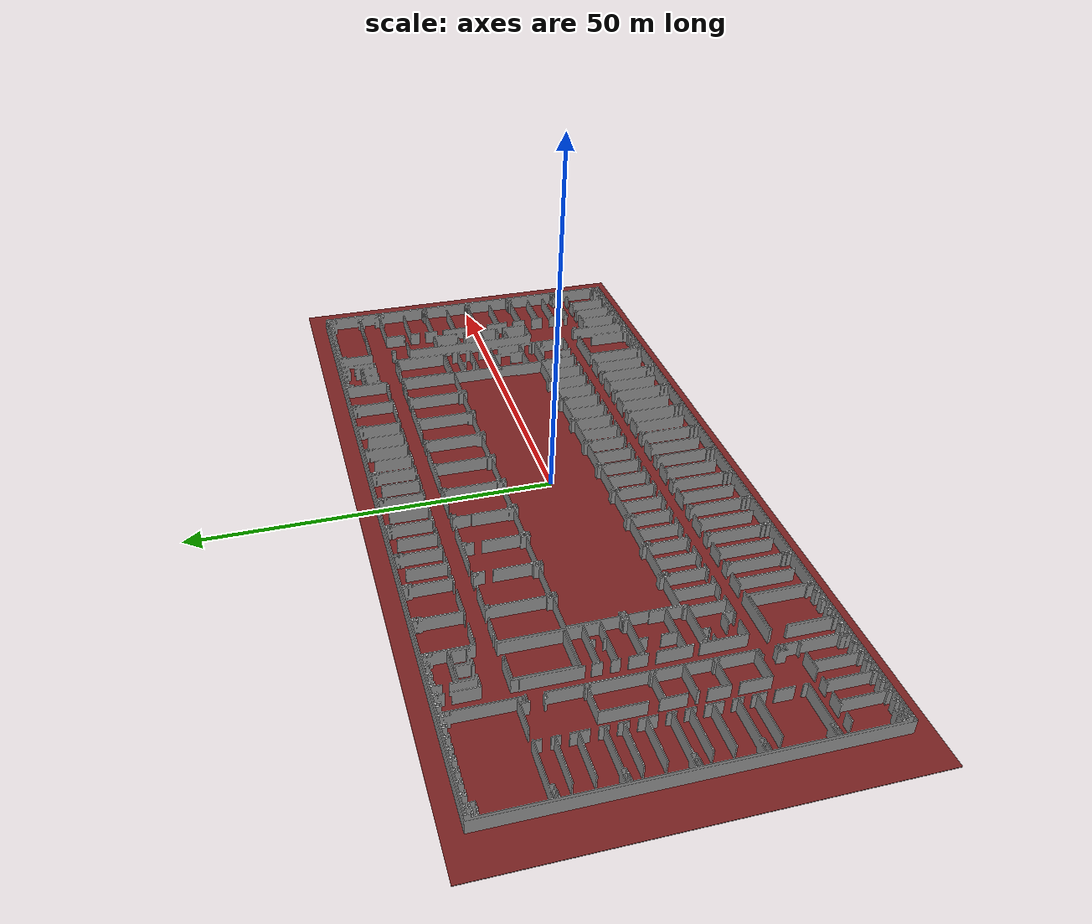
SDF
<sdf version='1.6'>
  <world name='default'>
    <gravity>0 0 -9.8</gravity>

    <scene>
      <ambient>0.7 0.7 0.7 1.0</ambient>
      <background>0.8 0.8 0.8 1.0</background>
    </scene>

    <light name='sun' type='directional'>
      <pose frame=''>10.0 10.0 30 0 -0 0</pose>
      <diffuse>0.8 0.8 0.8 1</diffuse>
      <specular>0.1 0.1 0.1 1</specular>
      <cast_shadows>0</cast_shadows>
      <attenuation>
        <range>1000</range>
        <constant>0.9</constant>
        <linear>0.01</linear>
        <quadratic>0.001</quadratic>
      </attenuation>
      <direction>0 0 -1</direction>
    </light>

    <gui fullscreen='0'>
      <camera name='user_camera'>
        <pose frame=''>0 0 10 0 0 0</pose>
        <view_controller>orbit</view_controller>
        <projection_type>perspective</projection_type>
      </camera>
    </gui>

    <model name='ground_plane'>
      <static>1</static>
      <pose frame=''>0 0 -0.05 0 0 0</pose>
      <link name='link'>
        <collision name='collision'>
          <geometry>
            <box>
              <size>112.09 54.12 0.1</size>
            </box>
          </geometry>
          <surface>
            <friction>
              <ode>
                <mu>100</mu>
                <mu2>50</mu2>
              </ode>
              <torsional>
                <ode/>
              </torsional>
            </friction>
            <contact>
              <ode/>
            </contact>
            <bounce/>
          </surface>
          <max_contacts>10</max_contacts>
        </collision>
        <visual name='visual'>
          <geometry>
            <box>
              <size>112.09 54.12 0.1</size>
            </box>
          </geometry>
          <material>
            <ambient>0.35 0.05 0.05 1</ambient>
            <diffuse>0.45 0.12 0.12 1</diffuse>
            <specular>0.99 0.99 0.99 1</specular>
            <emissive>0.2 0.2 0.2 1</emissive>
          </material>
        </visual>
        <self_collide>0</self_collide>
        <kinematic>0</kinematic>
        <gravity>1</gravity>
      </link>
    </model>

    <model name="povo_walls">
      <pose frame=''>0 0 0 0 0 0</pose>
      <include>
        <static>true</static>
        <uri>model://povo</uri>
      </include>
    </model>
  </world>
</sdf>

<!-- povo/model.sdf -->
<sdf version="1.6">
<model name='povo'>
      <static>1</static>
      <link name='walls'>
        <self_collide>0</self_collide>
        <kinematic>0</kinematic>
        <gravity>1</gravity>

        <visual name='Walls_Visual'>
          <geometry>
            <mesh>
              <uri>model://povo/meshes/povo.dae</uri>
            </mesh>
          </geometry>
          <cast_shadows>1</cast_shadows>
          <transparency>0</transparency>
        </visual>

        <collision name='Walls_Collision'>
          <geometry>
            <mesh>
              <uri>model://povo/meshes/povo.dae</uri>
            </mesh>
          </geometry>
        </collision>

      </link>
    </model>
</sdf>
